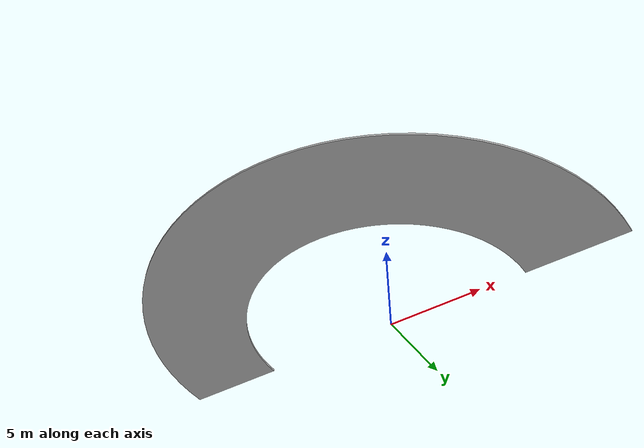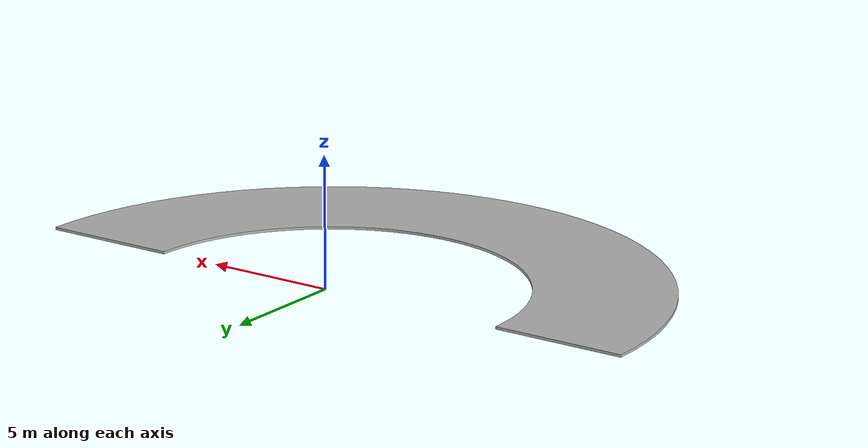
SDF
<?xml version="1.0" ?>
<sdf version="1.6">
  <model name="curved_road_10_3">
    <pose>0 0 0 0 0 0</pose>
    <static>true</static>
    <link name="link">
      <inertial>
        <pose>0 0 0 0 0 0</pose>
        <mass>1</mass>
        <inertia>
          <ixx>1</ixx>
          <iyy>1</iyy>
          <izz>1</izz>
          <ixy>0</ixy>
          <ixz>0</ixz>
        </inertia>
      </inertial>
      <visual name="visual">
        <geometry>
          <mesh>
            <uri>model://curved_road_10_3/meshes/curved_road_10.dae</uri>
          </mesh>
        </geometry>
      </visual>
      <collision name="collision">
        <geometry>
          <mesh>
            <uri>model://curved_road_10_3/meshes/curved_road_10.dae</uri>
          </mesh>
        </geometry>
      </collision>
    </link>
  </model>
</sdf>
